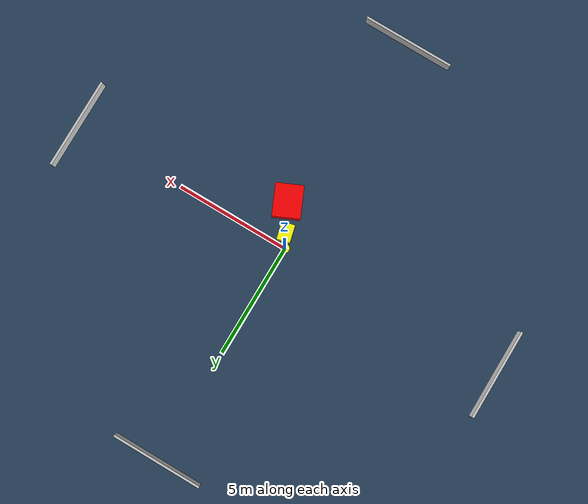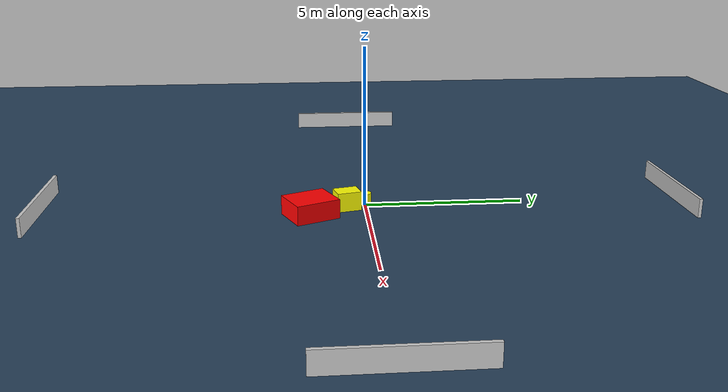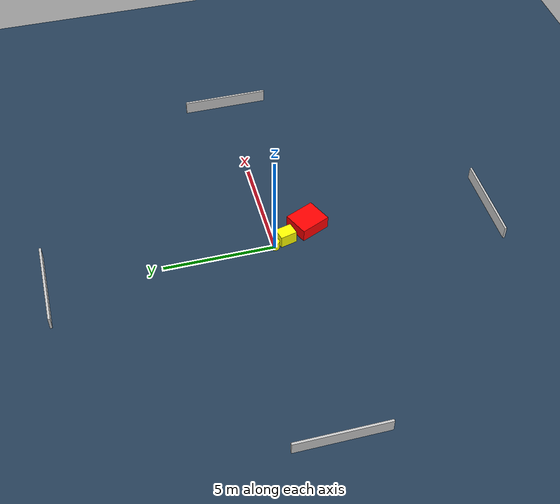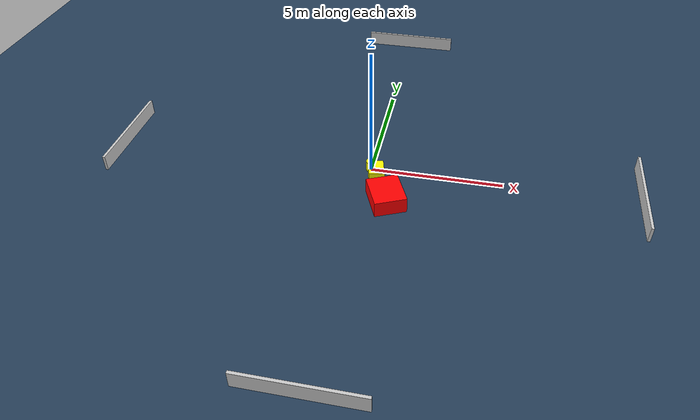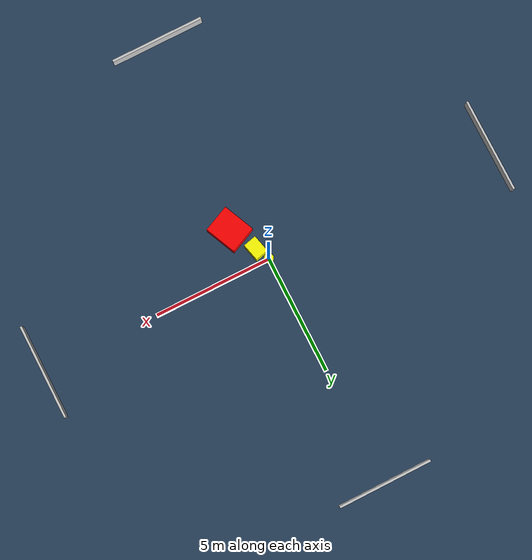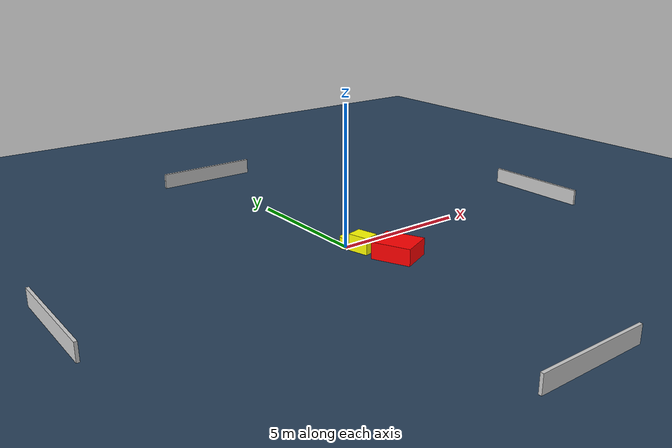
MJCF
<?xml version="1.0" ?>
<mujoco model="generated_environment">
  <option timestep="0.01" integrator="RK4" cone="elliptic"/>
  <default>
    <geom density="1"/>
  </default>
  <asset>
    <texture builtin="gradient" height="3072" name="skybox" rgb1="0.3 0.5 0.7" rgb2="0 0 0" type="skybox" width="512"/>
    <texture builtin="checker" height="300" name="groundplane" rgb1="0.2 0.3 0.4" rgb2="0.1 0.2 0.3" type="2d" width="300"/>
    <material name="groundplane" reflectance="0.2" texrepeat="5 5" texture="groundplane"/>
  </asset>
  <worldbody>
    <light dir="0 0 -1" directional="true" pos="0 0 1.5"/>
    <geom condim="3" friction="0.5 0.005 0.001" material="groundplane" name="floor" pos="0 0 0" size="0 0 0.05" type="plane"/>
    <body name="walls">
      <geom name="wall_1" condim="4" pos="-10.0 0.0 0.3" rgba="0.800000011920929 0.800000011920929 0.800000011920929 1.0" size="0.05 2.0 0.3" type="box"/>
      <geom name="wall_2" condim="4" pos="10.0 0.0 0.3" rgba="0.800000011920929 0.800000011920929 0.800000011920929 1.0" size="0.05 2.0 0.3" type="box"/>
      <geom name="wall_3" condim="4" pos="0.0 -10.0 0.3" rgba="0.800000011920929 0.800000011920929 0.800000011920929 1.0" size="2.0 0.05 0.3" type="box"/>
      <geom name="wall_4" condim="4" pos="0.0 10.0 0.3" rgba="0.800000011920929 0.800000011920929 0.800000011920929 1.0" size="2.0 0.05 0.3" type="box"/>
    </body>
    <body name="robot">
      <joint name="joint_x" type="slide" pos="0 0 0" axis="1 0 0"/>
      <joint name="joint_y" type="slide" pos="0 0 0" axis="0 1 0"/>
      <geom name="robot" type="cylinder" pos="0.0 0.0 0.2" size="0.2 0.2 0.0" mass="5.0" friction="1.0 0.005 0.0001" condim="4" rgba="1.0 1.0 0.0 1.0"/>
    </body>
    <body name="obstacle_1_movable">
      <geom name="obstacle_1_movable" condim="4" pos="0.29182161789182764 -0.5727842144670134 0.3" euler="0 0 103.91742686953788" friction="0.0 0.005 0.001" rgba="1.0 1.0 0.0 1.0" size="0.3809201369270535 0.2873100551563931 0.3" type="box" mass="0.1"/>
      <joint type="free"/>
    </body>
    <body name="obstacle_2_static">
      <geom name="obstacle_2_static" condim="4" pos="0.8786391986214218 -1.7234662584617473 0.3" euler="0 0 24.167061469595545" friction="0.0 0.005 0.001" rgba="1.0 0.0 0.0 1.0" size="0.5956799365662073 0.6995634337277281 0.3" type="box"/>
    </body>
  </worldbody>
  <actuator>
    <motor name="actuator_x" joint="joint_x" gear="1" ctrlrange="-1 1"/>
    <motor name="actuator_y" joint="joint_y" gear="1" ctrlrange="-1 1"/>
  </actuator>
</mujoco>
